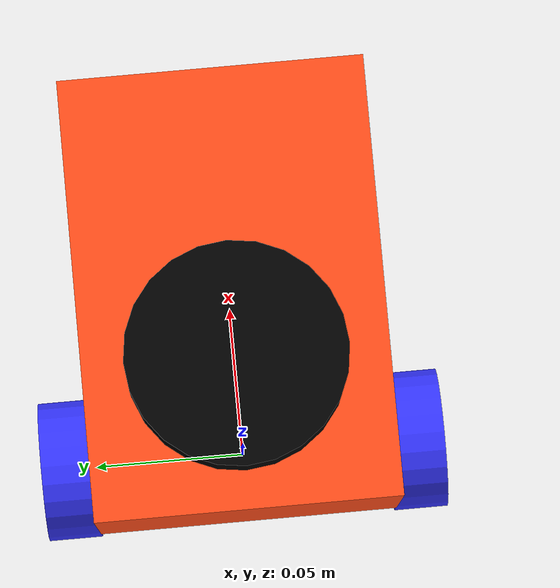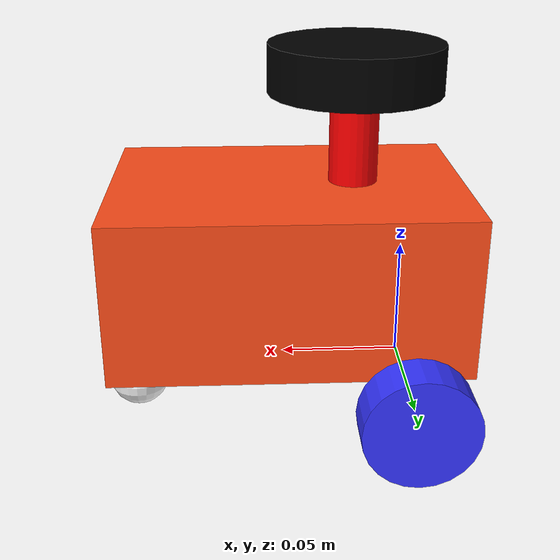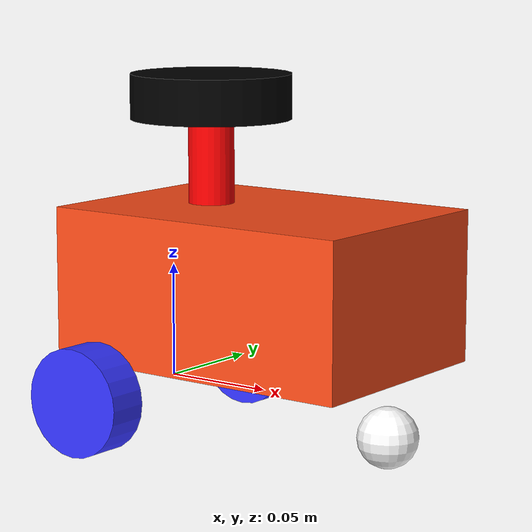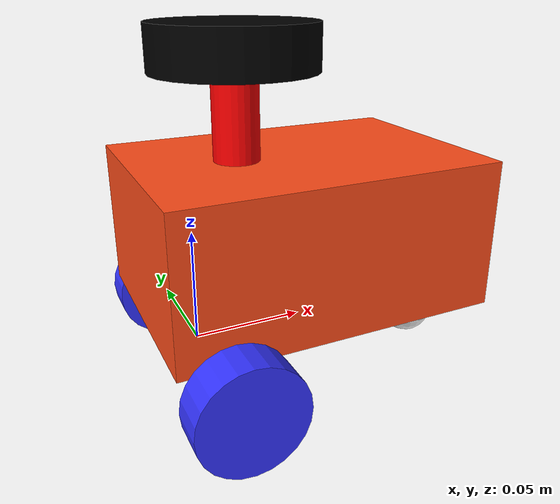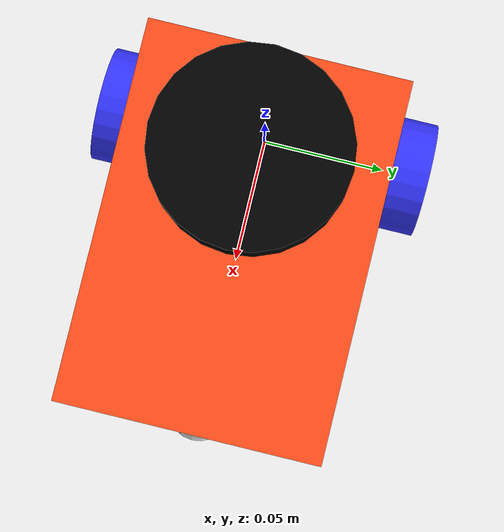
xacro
<?xml version="1.0"?>
<robot xmlns:xacro="http://www.ros.org/wiki/xacro" name="robot">

  <xacro:arg name="use_ros2_control" default="true" />
  <xacro:arg name="sim_mode" default="false" />

  <xacro:include filename="robot_core.xacro" />

  <xacro:if value="$(arg use_ros2_control)">
    <xacro:include filename="ros2_control.xacro" />
  </xacro:if>
  <xacro:unless value="$(arg use_ros2_control)">
    <xacro:include filename="gazebo_control.xacro" />
  </xacro:unless>
  <xacro:include filename="lidar_v2.xacro" />

</robot>

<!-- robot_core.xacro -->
<robot xmlns:xacro="http://www.ros.org/wiki/xacro">
  <xacro:include filename="inertial_macros.xacro" />

  <xacro:property name="chassis_length" value="0.144" />
  <xacro:property name="chassis_width" value="0.100" />
  <xacro:property name="chassis_height" value="0.066" />
  <xacro:property name="chassis_mass" value="0.25" />
  <xacro:property name="wheel_radius" value="0.0235" />
  <xacro:property name="wheel_thickness" value="0.018" />
  <xacro:property name="wheel_mass" value="0.025" />
  <xacro:property name="wheel_offset_x" value="${wheel_radius}" />
  <xacro:property name="wheel_offset_y" value="${chassis_width/2+wheel_thickness/2}" />
  <xacro:property name="wheel_offset_z" value="${-wheel_radius+0.01}" />
  <xacro:property name="caster_wheel_radius" value="0.013" />
  <xacro:property name="caster_wheel_mass" value="0.002" />
  <xacro:property name="caster_wheel_offset_x" value="${chassis_length-caster_wheel_radius/2}" />
  <xacro:property name="caster_wheel_offset_z"
    value="${wheel_offset_z - wheel_radius + caster_wheel_radius}" />

  <material name="white">
    <color rgba="1 1 1 1" />
  </material>

  <material name="orange">
    <color rgba="1 0.3 0.1 1" />
  </material>

  <material name="blue">
    <color rgba="0.2 0.2 1 1" />
  </material>

  <material name="black">
    <color rgba="0 0 0 1" />
  </material>

  <material name="red">
    <color rgba="1 0 0 1" />
  </material>

  <!-- BASE LINK -->

  <link name="base_link">

  </link>

  <!-- BASE_FOOTPRINT LINK -->

  <joint name="base_footprint_joint" type="fixed">
    <parent link="base_link" />
    <child link="base_footprint" />
    <origin xyz="0 0 0" rpy="0 0 0" />
  </joint>

  <link name="base_footprint">
  </link>

  <!-- CHASSIS LINK -->

  <joint name="chassis_joint" type="fixed">
    <parent link="base_link" />
    <child link="chassis" />
    <origin xyz="${-wheel_offset_x} 0 ${-wheel_offset_z}" />
  </joint>

  <link name="chassis">
    <visual>
      <origin xyz="${chassis_length/2} 0 ${chassis_height/2}" />
      <geometry>
        <box size="${chassis_length} ${chassis_width} ${chassis_height}" />
      </geometry>
      <material name="orange" />
    </visual>
    <collision>
      <origin xyz="${chassis_length/2} 0 ${chassis_height/2}" />
      <geometry>
        <box size="${chassis_length} ${chassis_width} ${chassis_height}" />
      </geometry>
    </collision>
    <xacro:inertial_box mass="0.5" x="${chassis_length}" y="${chassis_width}" z="${chassis_height}">
      <origin xyz="${chassis_length/2} 0 ${chassis_height/2}" rpy="0 0 0" />
    </xacro:inertial_box>
  </link>

  <gazebo reference="chassis">
    <material>Gazebo/Orange</material>
  </gazebo>

  <!-- LEFT WHEEL LINK -->

  <joint name="left_wheel_joint" type="continuous">
    <parent link="base_link" />
    <child link="left_wheel" />
    <origin xyz="0 ${wheel_offset_y} 0" rpy="-${pi/2} 0 0" />
    <axis xyz="0 0 1" />
  </joint>

  <link name="left_wheel">
    <visual>
      <geometry>
        <cylinder radius="${wheel_radius}" length="${wheel_thickness}" />
      </geometry>
      <material name="blue" />
    </visual>
    <collision>
      <geometry>
        <sphere radius="${wheel_radius}" />
      </geometry>
    </collision>
    <xacro:inertial_cylinder mass="${wheel_mass}" length="${wheel_thickness}"
      radius="${wheel_radius}">
      <origin xyz="0 0 0" rpy="0 0 0" />
    </xacro:inertial_cylinder>
  </link>

  <gazebo reference="left_wheel">
    <material>Gazebo/Blue</material>
  </gazebo>

  <!-- RIGHT WHEEL LINK -->

  <joint name="right_wheel_joint" type="continuous">
    <parent link="base_link" />
    <child link="right_wheel" />
    <origin xyz="0 ${-wheel_offset_y} 0" rpy="${pi/2} 0 0" />
    <axis xyz="0 0 -1" />
  </joint>

  <link name="right_wheel">
    <visual>
      <geometry>
        <cylinder radius="${wheel_radius}" length="${wheel_thickness}" />
      </geometry>
      <material name="blue" />
    </visual>
    <collision>
      <geometry>
        <sphere radius="${wheel_radius}" />
      </geometry>
    </collision>
    <xacro:inertial_cylinder mass="${wheel_mass}" length="${wheel_thickness}"
      radius="${wheel_radius}">
      <origin xyz="0 0 0" rpy="0 0 0" />
    </xacro:inertial_cylinder>
  </link>

  <gazebo reference="right_wheel">
    <material>Gazebo/Blue</material>
  </gazebo>

  <!-- CASTER WHEEL LINK -->

  <joint name="caster_wheel_joint" type="fixed">
    <parent link="chassis" />
    <child link="caster_wheel" />
    <origin xyz="${caster_wheel_offset_x} 0 ${caster_wheel_offset_z}" />
  </joint>

  <link name="caster_wheel">
    <visual>
      <geometry>
        <sphere radius="${caster_wheel_radius}" />
      </geometry>
      <material name="white" />
    </visual>
    <collision>
      <geometry>
        <sphere radius="${caster_wheel_radius}" />
      </geometry>
    </collision>
    <xacro:inertial_sphere mass="${caster_wheel_mass}" radius="${caster_wheel_radius}">
      <origin xyz="0 0 0" rpy="0 0 0" />
    </xacro:inertial_sphere>
  </link>

  <gazebo reference="caster_wheel">
    <material>Gazebo/White</material>
    <mu1 value="0.001" />
    <mu2 value="0.001" />
    <!-- Add below line to decrease slipping problem -->
    <fdir1 value="1 1 0"/>
  </gazebo>

</robot>

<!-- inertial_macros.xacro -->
<robot xmlns:xacro="http://www.ros.org/wiki/xacro">

  <!-- Specify some standard inertial calculations
  https://en.wikipedia.org/wiki/List_of_moments_of_inertia -->
  <!-- These make use of xacro's mathematical functionality -->

  <xacro:macro name="inertial_sphere" params="mass radius *origin">
    <inertial>
      <xacro:insert_block name="origin" />
      <mass value="${mass}" />
      <inertia ixx="${(2/5) * mass * (radius*radius)}" ixy="0.0" ixz="0.0"
        iyy="${(2/5) * mass * (radius*radius)}" iyz="0.0"
        izz="${(2/5) * mass * (radius*radius)}" />
    </inertial>
  </xacro:macro>

  <xacro:macro name="inertial_box" params="mass x y z *origin">
    <inertial>
      <xacro:insert_block name="origin" />
      <mass value="${mass}" />
      <inertia ixx="${(1/12) * mass * (y*y+z*z)}" ixy="0.0" ixz="0.0"
        iyy="${(1/12) * mass * (x*x+z*z)}" iyz="0.0"
        izz="${(1/12) * mass * (x*x+y*y)}" />
    </inertial>
  </xacro:macro>

  <xacro:macro name="inertial_cylinder" params="mass length radius *origin">
    <inertial>
      <xacro:insert_block name="origin" />
      <mass value="${mass}" />
      <inertia ixx="${(1/12) * mass * (3*radius*radius + length*length)}" ixy="0.0" ixz="0.0"
        iyy="${(1/12) * mass * (3*radius*radius + length*length)}" iyz="0.0"
        izz="${(1/2) * mass * (radius*radius)}" />
    </inertial>
  </xacro:macro>

</robot>

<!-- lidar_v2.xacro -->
<robot xmlns:xacro="http://www.ros.org/wiki/xacro">
  <!-- This is for the modified ZbotArctic with a car-style outer case -->
  <!-- The position of lidar changed from front to back -->
  <xacro:property name="lidar_length" value="0.0195" />
  <xacro:property name="lidar_radius" value="0.035" />
  <xacro:property name="lidar_post_radius" value="0.01" />
  <xacro:property name="lidar_post_length" value="${0.0315+0.005}" />

  <joint name="laser_joint" type="fixed">
    <parent link="chassis" />
    <child link="laser_frame" />
    <origin xyz="${lidar_radius+0.01} 0 ${0.066+lidar_post_length+lidar_length/2}" rpy="0 0 0" />
  </joint>

  <link name="laser_frame">
    <visual>
      <geometry>
        <cylinder radius="${lidar_radius}" length="${lidar_length}" />
      </geometry>
      <material name="black" />
    </visual>
    <visual>
      <origin xyz="0 0 ${-lidar_post_length/2-lidar_length/2}" />
      <geometry>
        <cylinder radius="${lidar_post_radius}" length="${lidar_post_length}" />
      </geometry>
      <material name="red" />
    </visual>
    <collision>
      <geometry>
        <cylinder radius="${lidar_post_radius}" length="${lidar_post_length}" />
      </geometry>
    </collision>
    <xacro:inertial_cylinder mass="0.1" length="0.04" radius="0.05">
      <origin xyz="0 0 0" rpy="0 0 0" />
    </xacro:inertial_cylinder>
  </link>

  <gazebo reference="laser_frame">
    <material>Gazebo/Black</material>

    <sensor name="laser" type="ray">
      <pose> 0 0 0 0 0 0 </pose>
      <visualize>false</visualize>
      <update_rate>10</update_rate>
      <ray>
        <scan>
          <horizontal>
            <samples>360</samples>
            <min_angle>-3.14</min_angle>
            <max_angle>3.14</max_angle>
          </horizontal>
        </scan>
        <range>
          <min>0.3</min>
          <max>12</max>
        </range>
      </ray>
      <plugin name="laser_controller" filename="libgazebo_ros_ray_sensor.so">
        <ros>
          <argument>~/out:=scan</argument>
        </ros>
        <output_type>sensor_msgs/LaserScan</output_type>
        <frame_name>laser_frame</frame_name>
      </plugin>
    </sensor>
  </gazebo>

</robot>
